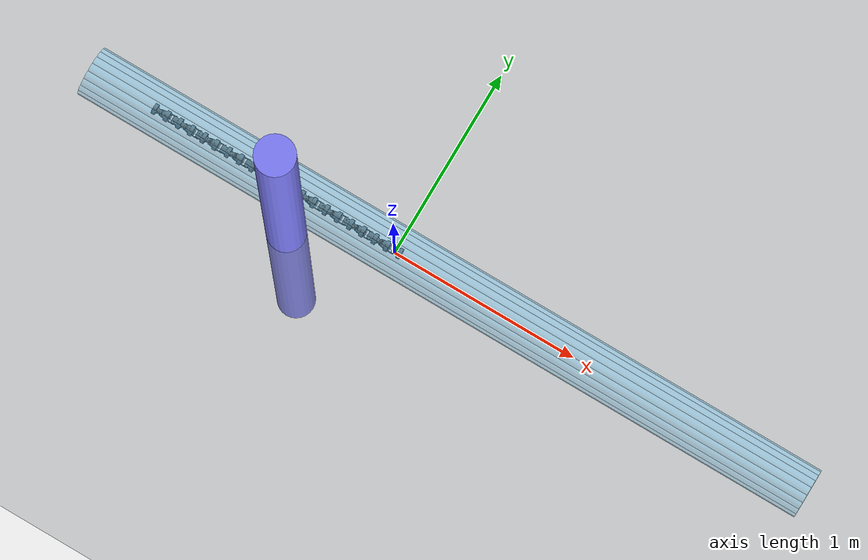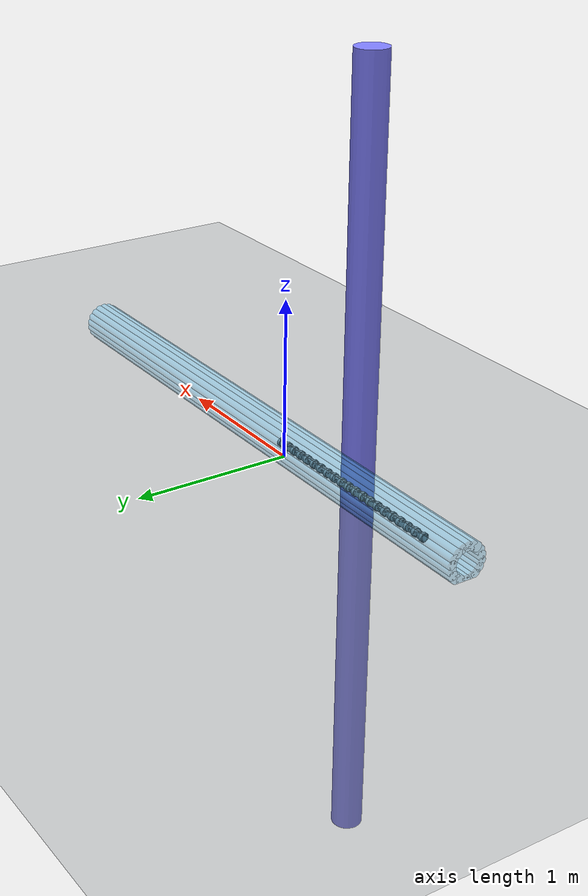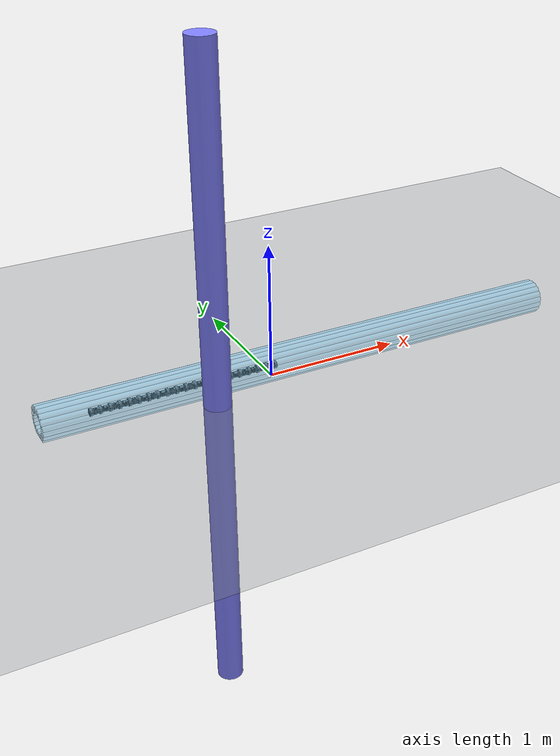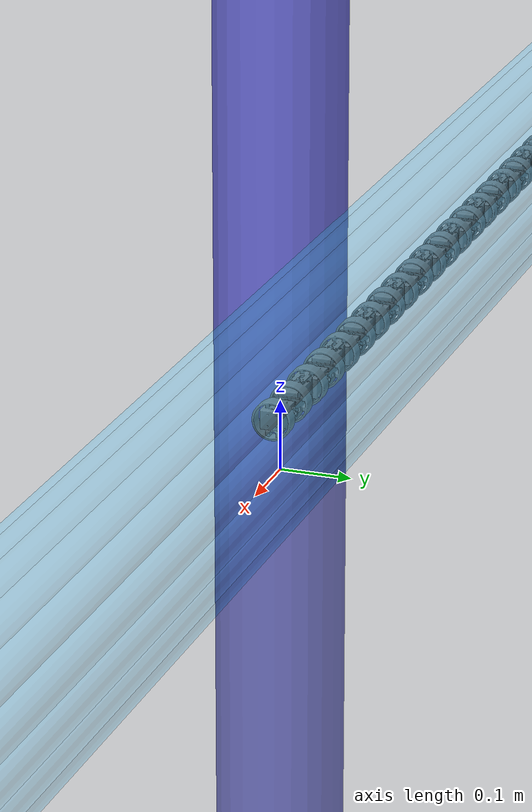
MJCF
<!--# 用下述代码生成空心管道pipe-->
<!--import math-->
<!--rad = 57.2957795-->
<!--for i in range(0, 361, 20):-->
<!--    print("%+.3f" % (math.cos(math.radians(i)) * r), "%+.3f" % (math.sin(math.radians(i)) * r), "%+.3f" % 0)-->

<mujoco model="snake-dgist">

    <option timestep="0.001" iterations="100" tolerance="1e-8" solver="Newton" cone="elliptic"/>

    <asset>
        <texture name="texplane" type="2d" builtin="checker" rgb1=".8 .8 .8" rgb2=".1 0.15 0.2" width="512" height="512" mark="cross" markrgb=".8 .8 .8"/>

        <texture name="texgeom" type="cube" builtin="flat" mark="cross" width="127" height="1278"
            rgb1="0.8 0.6 0.4" rgb2="0.8 0.6 0.4" markrgb="1 1 1" random="0.01"/>

        <material name="matplane" reflectance="0.3" texture="texplane" texrepeat="2 2" texuniform="true"/>

        <material name="matgeom" texture="texgeom" texuniform="true" rgba="0.8 0.6 .4 1"/>

        <hfield name="terrain" ncol="201" nrow="201" size="30 30 5 .1"/>

        <mesh name="head_link" file="./asset/c_head.stl"/>
        <mesh name="v_link" file="./asset/c_link_V.stl"/>
        <mesh name="h_link" file="./asset/c_link_H.stl"/>
        <mesh name="tail_link" file="./asset/c_tail.stl"/>
        <mesh name="PipeEmpty" file="./asset/Pipe-100mm-3T_low.stl" scale="2 2 2"/>
    </asset>

    <worldbody>
<body name="hollow_cylinder" pos="0.3 0 0.1" euler="0 90 0">拼凑出一个空心管道
      <geom name="cylinder00" pos="+0.100 +0.000 +0.000" type="cylinder" size="0.03 2" rgba="0.2 0.6 0.8 0.4"/>
      <geom name="cylinder01" pos="+0.094 +0.034 +0.000" type="cylinder" size="0.03 2" rgba="0.2 0.6 0.8 0.4"/>
      <geom name="cylinder02" pos="+0.077 +0.064 +0.000" type="cylinder" size="0.03 2" rgba="0.2 0.6 0.8 0.4"/>
      <geom name="cylinder03" pos="+0.050 +0.087 +0.000" type="cylinder" size="0.03 2" rgba="0.2 0.6 0.8 0.4"/>
      <geom name="cylinder04" pos="+0.017 +0.098 +0.000" type="cylinder" size="0.03 2" rgba="0.2 0.6 0.8 0.4"/>
      <geom name="cylinder05" pos="-0.017 +0.098 +0.000" type="cylinder" size="0.03 2" rgba="0.2 0.6 0.8 0.4"/>
      <geom name="cylinder06" pos="-0.050 +0.087 +0.000" type="cylinder" size="0.03 2" rgba="0.2 0.6 0.8 0.4"/>
      <geom name="cylinder07" pos="-0.077 +0.064 +0.000" type="cylinder" size="0.03 2" rgba="0.2 0.6 0.8 0.4"/>
      <geom name="cylinder08" pos="-0.094 +0.034 +0.000" type="cylinder" size="0.03 2" rgba="0.2 0.6 0.8 0.4"/>
      <geom name="cylinder09" pos="-0.100 +0.000 +0.000" type="cylinder" size="0.03 2" rgba="0.2 0.6 0.8 0.4"/>
      <geom name="cylinder10" pos="-0.094 -0.034 +0.000" type="cylinder" size="0.03 2" rgba="0.2 0.6 0.8 0.4"/>
      <geom name="cylinder11" pos="-0.077 -0.064 +0.000" type="cylinder" size="0.03 2" rgba="0.2 0.6 0.8 0.4"/>
      <geom name="cylinder12" pos="-0.050 -0.087 +0.000" type="cylinder" size="0.03 2" rgba="0.2 0.6 0.8 0.4"/>
      <geom name="cylinder13" pos="-0.017 -0.098 +0.000" type="cylinder" size="0.03 2" rgba="0.2 0.6 0.8 0.4"/>
      <geom name="cylinder14" pos="+0.017 -0.098 +0.000" type="cylinder" size="0.03 2" rgba="0.2 0.6 0.8 0.4"/>
      <geom name="cylinder15" pos="+0.050 -0.087 +0.000" type="cylinder" size="0.03 2" rgba="0.2 0.6 0.8 0.4"/>
      <geom name="cylinder16" pos="+0.077 -0.064 +0.000" type="cylinder" size="0.03 2" rgba="0.2 0.6 0.8 0.4"/>
      <geom name="cylinder17" pos="+0.094 -0.034 +0.000" type="cylinder" size="0.03 2" rgba="0.2 0.6 0.8 0.4"/>
      <geom name="cylinder18" pos="+0.100 -0.000 +0.000" type="cylinder" size="0.03 2" rgba="0.2 0.6 0.8 0.4"/>
    </body>

        <body name="pipe_v" pos="-0.5 -0.18 0" euler="0 0 0">
            <geom name="pipe" type="cylinder" size="0.1 2.5" rgba=".5 .5 1 1" friction="2 0.1 0.01"/>
        </body>

        <geom name="floor" pos="0 0 0" size="0 0 .25" type="plane" material="matplane" condim="6" friction="0.25 0.1 0.01"/>

        <light directional="false" diffuse="1 1 1" specular="0 0 0" pos="0 0 15" dir="0 0 -1" castshadow="false"/>

        <body name="head" pos="0 0 0.083" euler="0 90 -90">pos="0 0 0.033"
            <site name="s_head" pos="0 0 0.0295" euler="90 0 90"/>
            <freejoint name="root"/>
            <geom type="mesh" mesh="head_link" mass="0.2" condim="6" friction="0.5 0.15 0.015"/>

        <body name="link1" pos="0  0 -0.0695" euler="0 0 -180">
            <site name="s_link1" pos="0 0 0.0295" euler="-90 0 -90"/>
            <joint name="joint1" type="hinge" pos="0 0 0.0685" axis="1 0 0" limited="true" range="-90 90" damping="0.6" armature="0.01" />
            <geom type="mesh" mesh="h_link" mass="0.2" condim="6" friction="0.5 0.15 0.015"/>

        <body name="link2" pos="0  0 -0.0675" euler="0 0 -180">
            <site name="s_link2" pos="0 0 0.0295" euler="90 0 90"/>
            <joint name="joint2" type="hinge" pos="0 0 0.0685" axis="0 -1 0" limited="true" range="-90 90" damping="0.6" armature="0.01" />
            <geom type="mesh" mesh="v_link" mass="0.2" condim="6" friction="0.5 0.15 0.015"/>

        <body name="link3" pos="0  0 -0.0695" euler="0 0 -180">
            <site name="s_link3" pos="0 0 0.0295" euler="-90 0 -90"/>
            <joint name="joint3" type="hinge" pos="0 0 0.0685" axis="1 0 0" limited="true" range="-90 90" damping="0.6" armature="0.01" />
            <geom type="mesh" mesh="h_link" mass="0.2" condim="6" friction="0.5 0.15 0.015"/>

        <body name="link4" pos="0  0 -0.0675" euler="0 0 -180">
            <site name="s_link4" pos="0 0 0.0295" euler="90 0 90"/>
            <joint name="joint4" type="hinge" pos="0 0 0.0685" axis="0 -1 0" limited="true" range="-90 90" damping="0.6" armature="0.01" />
            <geom type="mesh" mesh="v_link" mass="0.2" condim="6" friction="0.5 0.15 0.015"/>

        <body name="link5" pos="0  0 -0.0695" euler="0 0 -180">
            <site name="s_link5" pos="0 0 0.0295" euler="-90 0 -90"/>
            <joint name="joint5" type="hinge" pos="0 0 0.0685" axis="1 0 0" limited="true" range="-90 90" damping="0.6" armature="0.01" />
            <geom type="mesh" mesh="h_link" mass="0.2" condim="6" friction="0.5 0.15 0.015"/>

        <body name="link6" pos="0  0 -0.0675" euler="0 0 -180">
            <site name="s_link6" pos="0 0 0.0295" euler="90 0 90"/>
            <joint name="joint6" type="hinge" pos="0 0 0.0685" axis="0 -1 0" limited="true" range="-90 90" damping="0.6" armature="0.01" />
            <geom type="mesh" mesh="v_link" mass="0.2" condim="6" friction="0.5 0.15 0.015"/>

        <body name="link7" pos="0  0 -0.0695" euler="0 0 -180">
            <site name="s_link7" pos="0 0 0.0295" euler="-90 0 -90"/>
            <joint name="joint7" type="hinge" pos="0 0 0.0685" axis="1 0 0" limited="true" range="-90 90" damping="0.6" armature="0.01" />
            <geom type="mesh" mesh="h_link" mass="0.2" condim="6" friction="0.5 0.15 0.015"/>

        <body name="link8" pos="0  0 -0.0675" euler="0 0 -180">
            <site name="s_link8" pos="0 0 0.0295" euler="90 0 90"/>
            <joint name="joint8" type="hinge" pos="0 0 0.0685" axis="0 -1 0" limited="true" range="-90 90" damping="0.6" armature="0.01" />
            <geom type="mesh" mesh="v_link" mass="0.2" condim="6" friction="0.5 0.15 0.015"/>

        <body name="link9" pos="0  0 -0.0695" euler="0 0 -180">
            <site name="s_link9" pos="0 0 0.0295" euler="-90 0 -90"/>
            <joint name="joint9" type="hinge" pos="0 0 0.0685" axis="1 0 0" limited="true" range="-90 90" damping="0.6" armature="0.01" />
            <geom type="mesh" mesh="h_link" mass="0.2" condim="6" friction="0.5 0.15 0.015"/>

        <body name="link10" pos="0  0 -0.0675" euler="0 0 -180">
            <site name="s_link10" pos="0 0 0.0295" euler="90 0 90"/>
            <joint name="joint10" type="hinge" pos="0 0 0.0685" axis="0 -1 0" limited="true" range="-90 90" damping="0.6" armature="0.01" />
            <geom type="mesh" mesh="v_link" mass="0.2" condim="6" friction="0.5 0.15 0.015"/>

        <body name="link11" pos="0  0 -0.0695" euler="0 0 -180">
            <site name="s_link11" pos="0 0 0.0295" euler="-90 0 -90"/>
            <joint name="joint11" type="hinge" pos="0 0 0.0685" axis="1 0 0" limited="true" range="-90 90" damping="0.6" armature="0.01" />
            <geom type="mesh" mesh="h_link" mass="0.2" condim="6" friction="0.5 0.15 0.015"/>

        <body name="link12" pos="0  0 -0.0675" euler="0 0 -180">
            <site name="s_link12" pos="0 0 0.0295" euler="90 0 90"/>
            <joint name="joint12" type="hinge" pos="0 0 0.0685" axis="0 -1 0" limited="true" range="-90 90" damping="0.6" armature="0.01" />
            <geom type="mesh" mesh="v_link" mass="0.2" condim="6" friction="0.5 0.15 0.015"/>

        <body name="link13" pos="0  0 -0.0695" euler="0 0 -180">
            <site name="s_link13" pos="0 0 0.0295" euler="-90 0 -90"/>
            <joint name="joint13" type="hinge" pos="0 0 0.0685" axis="1 0 0" limited="true" range="-90 90" damping="0.6" armature="0.01" />
            <geom type="mesh" mesh="h_link" mass="0.2" condim="6" friction="0.5 0.15 0.015"/>

        <body name="link14" pos="0  0 -0.0675" euler="0 0 -180">
            <site name="s_link14" pos="0 0 0.0295" euler="90 0 90"/>
            <joint name="joint14" type="hinge" pos="0 0 0.0685" axis="0 -1 0" limited="true" range="-90 90" damping="0.6" armature="0.01" />
            <geom type="mesh" mesh="v_link" mass="0.2" condim="6" friction="0.5 0.15 0.015"/>

        <body name="link15" pos="0  0 -0.0695" euler="0 0 -180">
            <site name="s_link15" pos="0 0 0.0295" euler="-90 0 -90"/>
            <joint name="joint15" type="hinge" pos="0 0 0.0685" axis="1 0 0" limited="true" range="-90 90" damping="0.6" armature="0.01" />
            <geom type="mesh" mesh="h_link" mass="0.2" condim="6" friction="0.5 0.15 0.015"/>

        <body name="link16" pos="0  0 -0.0675" euler="0 0 -180">
            <site name="s_link16" pos="0 0 0.0295" euler="90 0 90"/>
            <joint name="joint16" type="hinge" pos="0 0 0.0685" axis="0 -1 0" limited="true" range="-90 90" damping="0.6" armature="0.01" />
            <geom type="mesh" mesh="v_link" mass="0.2" condim="6" friction="0.5 0.15 0.015"/>

        <body name="link17" pos="0  0 -0.0695" euler="0 0 -180">
            <site name="s_link17" pos="0 0 0.0295" euler="-90 0 -90"/>
            <joint name="joint17" type="hinge" pos="0 0 0.0685" axis="1 0 0" limited="true" range="-90 90" damping="0.6" armature="0.01" />
            <geom type="mesh" mesh="h_link" mass="0.2" condim="6" friction="0.5 0.15 0.015"/>

        <body name="link18" pos="0  0 -0.0675" euler="0 0 -180">
            <site name="s_link18" pos="0 0 0.0295" euler="90 0 90"/>
            <joint name="joint18" type="hinge" pos="0 0 0.0685" axis="0 -1 0" limited="true" range="-90 90" damping="0.6" armature="0.01" />
            <geom type="mesh" mesh="v_link" mass="0.2" condim="6" friction="0.5 0.15 0.015"/>

        <body name="link19" pos="0  0 -0.0695" euler="0 0 -180">
            <site name="s_link19" pos="0 0 0.0295" euler="-90 0 -90"/>
            <joint name="joint19" type="hinge" pos="0 0 0.0685" axis="1 0 0" limited="true" range="-90 90" damping="0.6" armature="0.01" />
            <geom type="mesh" mesh="h_link" mass="0.2" condim="6" friction="0.5 0.15 0.015"/>

        <body name="tail" pos="0  0 -0.0675" euler="0 0 -180">
            <site name="s_tail" pos="0 0 0.0295" euler="90 0 90"/>
            <joint name="joint20" type="hinge" pos="0 0 0.0685" axis="0 -1 0" limited="true" range="-90 90" damping="0.6" armature="0.01" />
            <geom type="mesh" mesh="tail_link" mass="0.2" condim="6" friction="0.5 0.15 0.015"/>

        </body>
        </body>
        </body>
        </body>
        </body>
        </body>
        </body>
        </body>
        </body>
        </body>
        </body>
        </body>
        </body>
        </body>
        </body>
        </body>
        </body>
        </body>
        </body>
        </body>
        </body>
    </worldbody>

    <actuator>
        <position name="servo_1" ctrllimited="true" ctrlrange="-1.5708 1.5708" forcelimited="true" forcerange="-3.0 3.0" gear="1" joint="joint1" kp="4"/>
        <position name="servo_2" ctrllimited="true" ctrlrange="-1.5708 1.5708" forcelimited="true" forcerange="-3.0 3.0" gear="1" joint="joint2" kp="4"/>
        <position name="servo_3" ctrllimited="true" ctrlrange="-1.5708 1.5708" forcelimited="true" forcerange="-3.0 3.0" gear="1" joint="joint3" kp="4"/>
        <position name="servo_4" ctrllimited="true" ctrlrange="-1.5708 1.5708" forcelimited="true" forcerange="-3.0 3.0" gear="1" joint="joint4" kp="4"/>
        <position name="servo_5" ctrllimited="true" ctrlrange="-1.5708 1.5708" forcelimited="true" forcerange="-3.0 3.0" gear="1" joint="joint5" kp="4"/>
        <position name="servo_6" ctrllimited="true" ctrlrange="-1.5708 1.5708" forcelimited="true" forcerange="-3.0 3.0" gear="1" joint="joint6" kp="4"/>
        <position name="servo_7" ctrllimited="true" ctrlrange="-1.5708 1.5708" forcelimited="true" forcerange="-3.0 3.0" gear="1" joint="joint7" kp="4"/>
        <position name="servo_8" ctrllimited="true" ctrlrange="-1.5708 1.5708" forcelimited="true" forcerange="-3.0 3.0" gear="1" joint="joint8" kp="4"/>
        <position name="servo_9" ctrllimited="true" ctrlrange="-1.5708 1.5708" forcelimited="true" forcerange="-3.0 3.0" gear="1" joint="joint9" kp="4"/>
        <position name="servo_10" ctrllimited="true" ctrlrange="-1.5708 1.5708" forcelimited="true" forcerange="-3.0 3.0" gear="1" joint="joint10" kp="4"/>
        <position name="servo_11" ctrllimited="true" ctrlrange="-1.5708 1.5708" forcelimited="true" forcerange="-3.0 3.0" gear="1" joint="joint11" kp="4"/>
        <position name="servo_12" ctrllimited="true" ctrlrange="-1.5708 1.5708" forcelimited="true" forcerange="-3.0 3.0" gear="1" joint="joint12" kp="4"/>
        <position name="servo_13" ctrllimited="true" ctrlrange="-1.5708 1.5708" forcelimited="true" forcerange="-3.0 3.0" gear="1" joint="joint13" kp="4"/>
        <position name="servo_14" ctrllimited="true" ctrlrange="-1.5708 1.5708" forcelimited="true" forcerange="-3.0 3.0" gear="1" joint="joint14" kp="4"/>
        <position name="servo_15" ctrllimited="true" ctrlrange="-1.5708 1.5708" forcelimited="true" forcerange="-3.0 3.0" gear="1" joint="joint15" kp="4"/>
        <position name="servo_16" ctrllimited="true" ctrlrange="-1.5708 1.5708" forcelimited="true" forcerange="-3.0 3.0" gear="1" joint="joint16" kp="4"/>
        <position name="servo_17" ctrllimited="true" ctrlrange="-1.5708 1.5708" forcelimited="true" forcerange="-3.0 3.0" gear="1" joint="joint17" kp="4"/>
        <position name="servo_18" ctrllimited="true" ctrlrange="-1.5708 1.5708" forcelimited="true" forcerange="-3.0 3.0" gear="1" joint="joint18" kp="4"/>
        <position name="servo_19" ctrllimited="true" ctrlrange="-1.5708 1.5708" forcelimited="true" forcerange="-3.0 3.0" gear="1" joint="joint19" kp="4"/>
        <position name="servo_20" ctrllimited="true" ctrlrange="-1.5708 1.5708" forcelimited="true" forcerange="-3.0 3.0" gear="1" joint="joint20" kp="4"/>
    </actuator>

    <sensor>
        <!-- index 0 - 5 -->
        <accelerometer name="imu_accel" site="s_head"/>
        <gyro name="imu_gyro" site="s_head"/>

        <!-- index 6 - 19 -->
        <jointpos name="pos_joint1" joint="joint1"/>
        <jointpos name="pos_joint2" joint="joint2"/>
        <jointpos name="pos_joint3" joint="joint3"/>
        <jointpos name="pos_joint4" joint="joint4"/>
        <jointpos name="pos_joint5" joint="joint5"/>
        <jointpos name="pos_joint6" joint="joint6"/>
        <jointpos name="pos_joint7" joint="joint7"/>
        <jointpos name="pos_joint8" joint="joint8"/>
        <jointpos name="pos_joint9" joint="joint9"/>
        <jointpos name="pos_joint10" joint="joint10"/>
        <jointpos name="pos_joint11" joint="joint11"/>
        <jointpos name="pos_joint12" joint="joint12"/>
        <jointpos name="pos_joint13" joint="joint13"/>
        <jointpos name="pos_joint14" joint="joint14"/>
        <jointpos name="pos_joint15" joint="joint15"/>
        <jointpos name="pos_joint16" joint="joint16"/>
        <jointpos name="pos_joint17" joint="joint17"/>
        <jointpos name="pos_joint18" joint="joint18"/>
        <jointpos name="pos_joint19" joint="joint19"/>
        <jointpos name="pos_joint20" joint="joint20"/>

        <!-- index 20 - 33 -->
        <actuatorvel name="vel_joint1" actuator="servo_1"/>
        <actuatorvel name="vel_joint2" actuator="servo_2"/>
        <actuatorvel name="vel_joint3" actuator="servo_3"/>
        <actuatorvel name="vel_joint4" actuator="servo_4"/>
        <actuatorvel name="vel_joint5" actuator="servo_5"/>
        <actuatorvel name="vel_joint6" actuator="servo_6"/>
        <actuatorvel name="vel_joint7" actuator="servo_7"/>
        <actuatorvel name="vel_joint8" actuator="servo_8"/>
        <actuatorvel name="vel_joint9" actuator="servo_9"/>
        <actuatorvel name="vel_joint10" actuator="servo_10"/>
        <actuatorvel name="vel_joint11" actuator="servo_11"/>
        <actuatorvel name="vel_joint12" actuator="servo_12"/>
        <actuatorvel name="vel_joint13" actuator="servo_13"/>
        <actuatorvel name="vel_joint14" actuator="servo_14"/>
        <actuatorvel name="vel_joint15" actuator="servo_15"/>
        <actuatorvel name="vel_joint16" actuator="servo_16"/>
        <actuatorvel name="vel_joint17" actuator="servo_17"/>
        <actuatorvel name="vel_joint18" actuator="servo_18"/>
        <actuatorvel name="vel_joint19" actuator="servo_19"/>
        <actuatorvel name="vel_joint20" actuator="servo_20"/>

        <!-- index 34 - 47 -->
        <actuatorfrc name="torque_joint1" actuator="servo_1"/>
        <actuatorfrc name="torque_joint2" actuator="servo_2"/>
        <actuatorfrc name="torque_joint3" actuator="servo_3"/>
        <actuatorfrc name="torque_joint4" actuator="servo_4"/>
        <actuatorfrc name="torque_joint5" actuator="servo_5"/>
        <actuatorfrc name="torque_joint6" actuator="servo_6"/>
        <actuatorfrc name="torque_joint7" actuator="servo_7"/>
        <actuatorfrc name="torque_joint8" actuator="servo_8"/>
        <actuatorfrc name="torque_joint9" actuator="servo_9"/>
        <actuatorfrc name="torque_joint10" actuator="servo_10"/>
        <actuatorfrc name="torque_joint11" actuator="servo_11"/>
        <actuatorfrc name="torque_joint12" actuator="servo_12"/>
        <actuatorfrc name="torque_joint13" actuator="servo_13"/>
        <actuatorfrc name="torque_joint14" actuator="servo_14"/>
        <actuatorfrc name="torque_joint15" actuator="servo_15"/>
        <actuatorfrc name="torque_joint16" actuator="servo_16"/>
        <actuatorfrc name="torque_joint17" actuator="servo_17"/>
        <actuatorfrc name="torque_joint18" actuator="servo_18"/>
        <actuatorfrc name="torque_joint19" actuator="servo_19"/>
        <actuatorfrc name="torque_joint20" actuator="servo_20"/>

        <!-- index 48 - 51 -->
        <framequat name="head_quat" objtype="site" objname="s_head"/>

        <!-- index 52 - 107 -->
        <framequat name="link1_quat" objtype="site" objname="s_link1"/>
        <framequat name="link2_quat" objtype="site" objname="s_link2"/>
        <framequat name="link3_quat" objtype="site" objname="s_link3"/>
        <framequat name="link4_quat" objtype="site" objname="s_link4"/>
        <framequat name="link5_quat" objtype="site" objname="s_link5"/>
        <framequat name="link6_quat" objtype="site" objname="s_link6"/>
        <framequat name="link7_quat" objtype="site" objname="s_link7"/>
        <framequat name="link8_quat" objtype="site" objname="s_link8"/>
        <framequat name="link9_quat" objtype="site" objname="s_link9"/>
        <framequat name="link10_quat" objtype="site" objname="s_link10"/>
        <framequat name="link11_quat" objtype="site" objname="s_link11"/>
        <framequat name="link12_quat" objtype="site" objname="s_link12"/>
        <framequat name="link13_quat" objtype="site" objname="s_link13"/>
        <framequat name="link14_quat" objtype="site" objname="s_link14"/>
        <framequat name="link15_quat" objtype="site" objname="s_link15"/>
        <framequat name="link16_quat" objtype="site" objname="s_link16"/>
        <framequat name="link17_quat" objtype="site" objname="s_link17"/>
        <framequat name="link18_quat" objtype="site" objname="s_link18"/>
        <framequat name="link19_quat" objtype="site" objname="s_link19"/>
        <framequat name="tail_quat" objtype="site" objname="s_tail"/>

    </sensor>
</mujoco>
